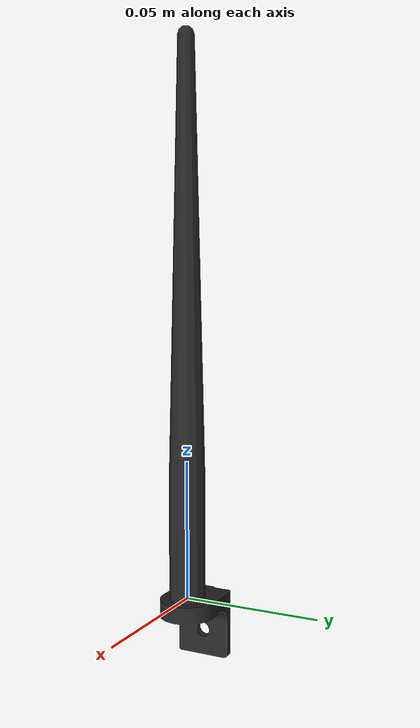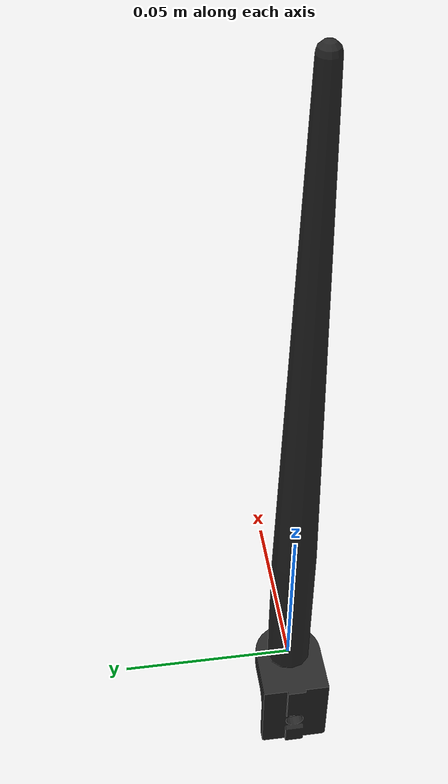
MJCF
<mujoco model="wifi_antenna">
  <default>
    <default class="visual">
      <geom group="2" type="mesh" contype="0" conaffinity="0"/>
    </default>
    <default class="collision">
      <geom group="3" type="mesh"/>
    </default>
  </default>
  <asset>
    <material name="mtl_wifi_antenna" specular="0.20000000000000004" shininess="1.0" rgba="0.14901961 0.14901961 0.14901961 1.0"/>
    <mesh file="wifi_antenna.obj"/>
  </asset>
  <worldbody>
    <body name="wifi_antenna">
      <geom material="mtl_wifi_antenna" mesh="wifi_antenna" class="visual"/>
      <geom mesh="wifi_antenna" class="collision"/>
    </body>
  </worldbody>
</mujoco>
